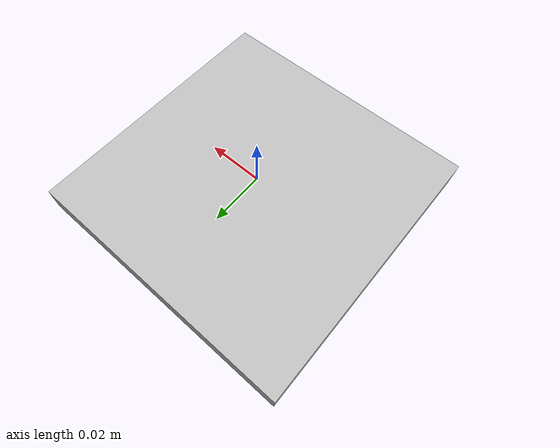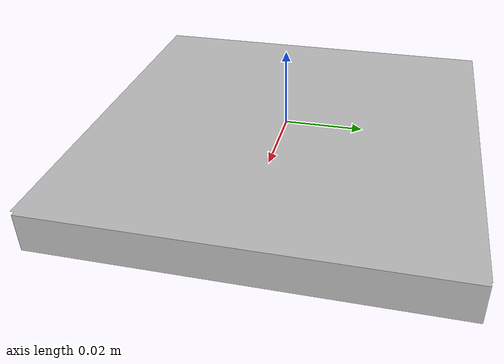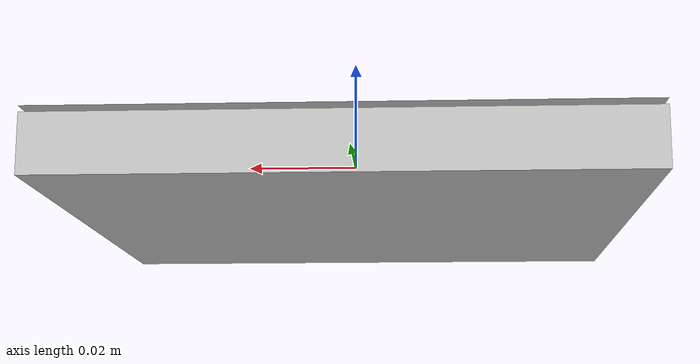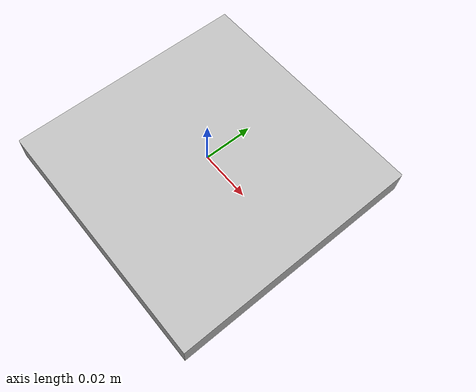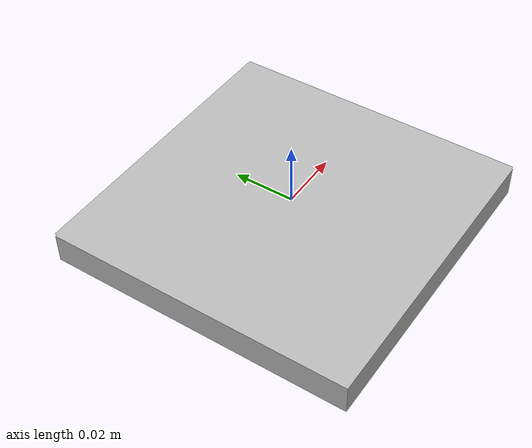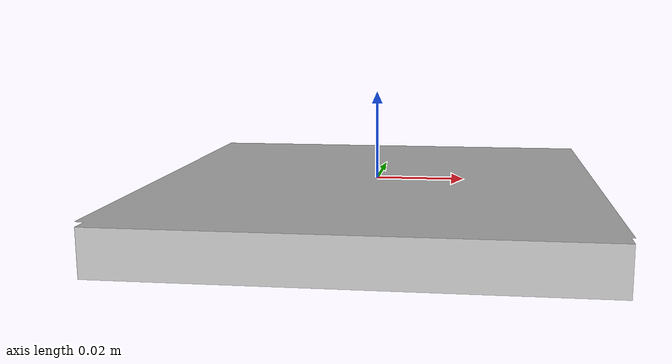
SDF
<?xml version='1.0'?>
<sdf version="1.4">
<model name="ARmarker_id06">
  <pose>0 0 0 0 0 0</pose>
    <link name="link">
      <inertial>
        <mass>1.0</mass>
        <inertia>
          <ixx>0.1</ixx>
          <ixy>0.0</ixy>
          <ixz>0.0</ixz>
          <iyy>0.1</iyy>
          <iyz>0.0</iyz>
          <izz>0.1</izz>
        </inertia>
      </inertial>
      <collision name="collision">
        <geometry>
          <mesh>
            <uri>model://ARmarker_id06/meshes/ARmarker_id06.dae</uri>
          </mesh>
        </geometry>
      </collision>
      <visual name="visual">
        <geometry>
          <mesh>
          <uri>model://ARmarker_id06/meshes/ARmarker_id06.dae</uri>
          </mesh>
        </geometry>
      </visual>
    </link>
  </model>
</sdf>
